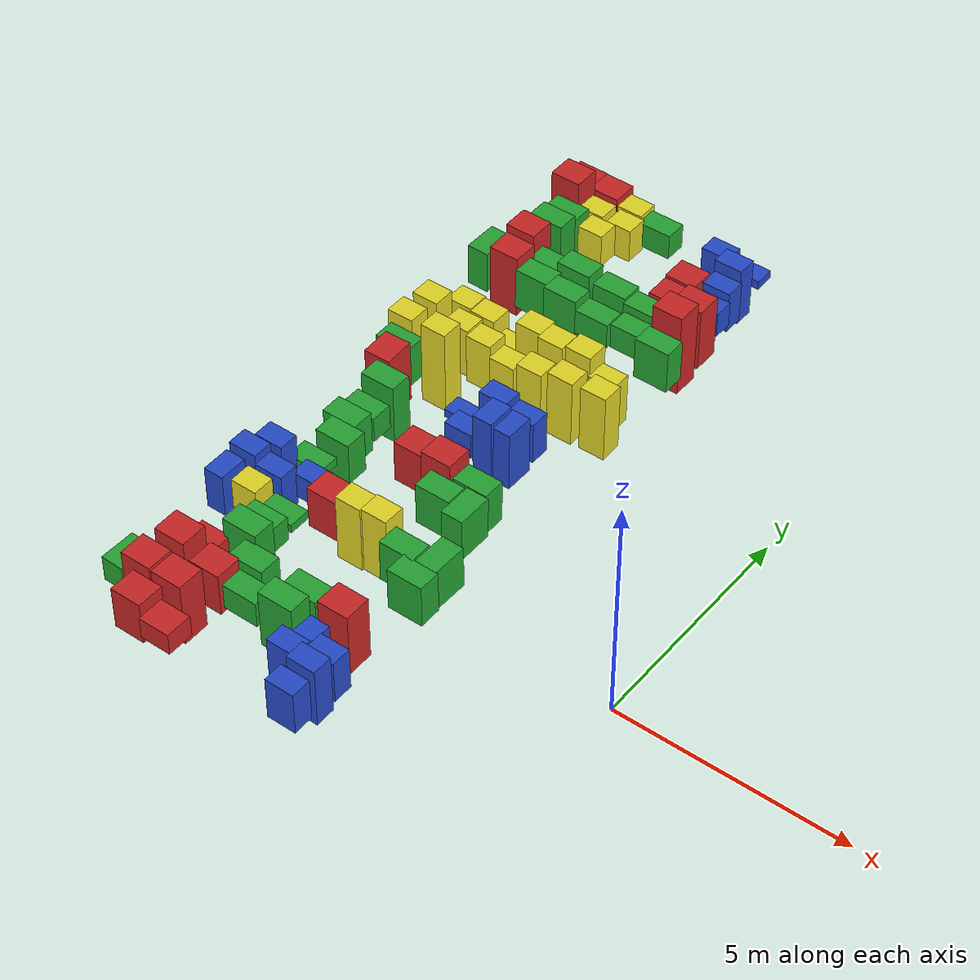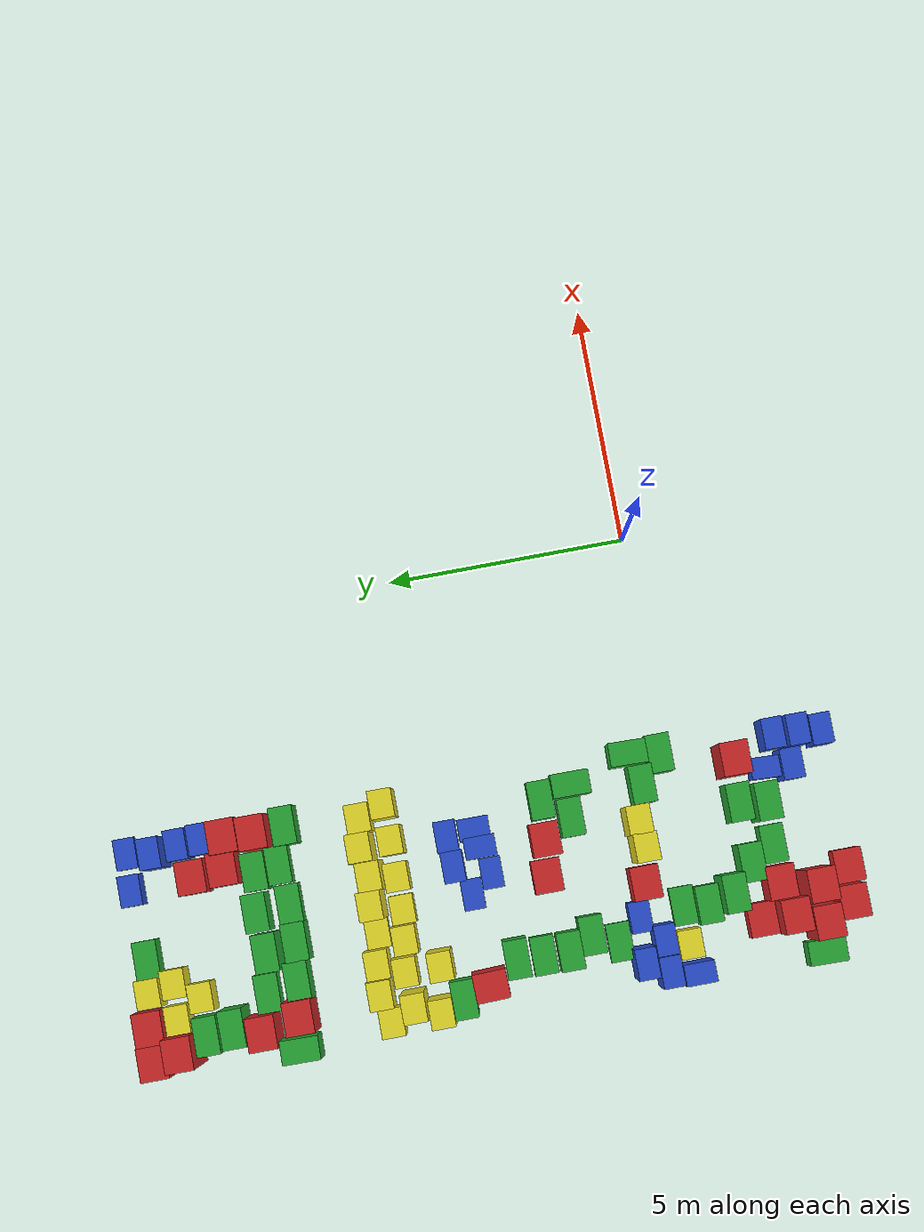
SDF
<sdf version="1.6">
 <world name="default">
  <gravity>0 0 -9.8</gravity>
  <magnetic_field>6e-06 2.3e-05 -4.2e-05</magnetic_field>
  <atmosphere type="adiabatic"/>
  <physics name="default_physics" default="0" type="ode">
   <max_step_size>0.001</max_step_size>
   <real_time_factor>1</real_time_factor>
   <real_time_update_rate>1000</real_time_update_rate>
  </physics>
  <scene><ambient>0.4 0.4 0.4 1</ambient><background>0.7 0.7 0.7 1</background><shadows>1</shadows></scene>
  <spherical_coordinates>
   <surface_model>EARTH_WGS84</surface_model>
   <latitude_deg>0</latitude_deg>
   <longitude_deg>0</longitude_deg>
   <elevation>0</elevation>
   <heading_deg>0</heading_deg>
  </spherical_coordinates>
  <model name="baggage_C_0.8">
   <static>1</static>
   <link name="link">
    <collision name="collision"><geometry><box><size>0.6 0.5 0.8</size></box></geometry></collision>
    <visual name="visual">
     <geometry><box><size>0.6 0.5 0.8</size></box></geometry>
     <material>
      <script><uri>file://media/materials/scripts/gazebo.material</uri><name>Gazebo/Yellow</name></script>
     </material>
    </visual>
   </link>
   <pose>-9.02288 6.55759 0 0 -0 0</pose>
  </model>
  <model name="baggage_C_1.2">
   <static>1</static>
   <link name="link">
    <collision name="collision"><geometry><box><size>0.6 0.5 1.2</size></box></geometry></collision>
    <visual name="visual">
     <geometry><box><size>0.6 0.5 1.2</size></box></geometry>
     <material>
      <script><uri>file://media/materials/scripts/gazebo.material</uri><name>Gazebo/Yellow</name></script>
     </material>
    </visual>
   </link>
   <pose>-8.42569 6.69145 0 0 -0 0</pose>
  </model>
  <model name="baggage_C_1.2_0">
   <static>1</static>
   <link name="link">
    <collision name="collision"><geometry><box><size>0.6 0.5 1.2</size></box></geometry></collision>
    <visual name="visual">
     <geometry><box><size>0.6 0.5 1.2</size></box></geometry>
     <material>
      <script><uri>file://media/materials/scripts/gazebo.material</uri><name>Gazebo/Yellow</name></script>
     </material>
    </visual>
   </link>
   <pose>-7.80627 6.64754 0 0 -0 0</pose>
  </model>
  <model name="baggage_C_0.4">
   <static>1</static>
   <link name="link">
    <collision name="collision"><geometry><box><size>0.6 0.5 0.4</size></box></geometry></collision>
    <visual name="visual">
     <geometry><box><size>0.6 0.5 0.4</size></box></geometry>
     <material>
      <script><uri>file://media/materials/scripts/gazebo.material</uri><name>Gazebo/Yellow</name></script>
     </material>
    </visual>
   </link>
   <pose>-7.18453 6.53717 0 0 -0 0</pose>
  </model>
  <model name="baggage_C_2.0">
   <static>1</static>
   <link name="link">
    <collision name="collision"><geometry><box><size>0.6 0.5 2</size></box></geometry></collision>
    <visual name="visual">
     <geometry><box><size>0.6 0.5 2</size></box></geometry>
     <material>
      <script><uri>file://media/materials/scripts/gazebo.material</uri><name>Gazebo/Yellow</name></script>
     </material>
    </visual>
   </link>
   <pose>-6.59003 6.55894 0 0 -0 0</pose>
  </model>
  <model name="baggage_C_2.0_0">
   <static>1</static>
   <link name="link">
    <collision name="collision"><geometry><box><size>0.6 0.5 2</size></box></geometry></collision>
    <visual name="visual">
     <geometry><box><size>0.6 0.5 2</size></box></geometry>
     <material>
      <script><uri>file://media/materials/scripts/gazebo.material</uri><name>Gazebo/Yellow</name></script>
     </material>
    </visual>
   </link>
   <pose>-5.99498 6.47714 0 0 -0 0</pose>
  </model>
  <model name="baggage_C_2.0_1">
   <static>1</static>
   <link name="link">
    <collision name="collision"><geometry><box><size>0.6 0.5 2</size></box></geometry></collision>
    <visual name="visual">
     <geometry><box><size>0.6 0.5 2</size></box></geometry>
     <material>
      <script><uri>file://media/materials/scripts/gazebo.material</uri><name>Gazebo/Yellow</name></script>
     </material>
    </visual>
   </link>
   <pose>-5.38391 6.57727 0 0 -0 0</pose>
  </model>
  <model name="baggage_C_1.2_1">
   <static>1</static>
   <link name="link">
    <collision name="collision"><geometry><box><size>0.6 0.5 1.2</size></box></geometry></collision>
    <visual name="visual">
     <geometry><box><size>0.6 0.5 1.2</size></box></geometry>
     <material>
      <script><uri>file://media/materials/scripts/gazebo.material</uri><name>Gazebo/Yellow</name></script>
     </material>
    </visual>
   </link>
   <pose>-4.77245 6.51191 0 0 -0 0</pose>
  </model>
  <model name="baggage_A_1.5">
   <static>1</static>
   <link name="link">
    <collision name="collision"><geometry><box><size>0.7 0.6 1.5</size></box></geometry></collision>
    <visual name="visual">
     <geometry><box><size>0.7 0.6 1.5</size></box></geometry>
     <material>
      <script><uri>file://media/materials/scripts/gazebo.material</uri><name>Gazebo/Red</name></script>
     </material>
    </visual>
   </link>
   <pose>-8.61221 -2.63519 0 0 -0 0</pose>
  </model>
  <model name="baggage_A_2.0">
   <static>1</static>
   <link name="link">
    <collision name="collision"><geometry><box><size>0.7 0.6 2</size></box></geometry></collision>
    <visual name="visual">
     <geometry><box><size>0.7 0.6 2</size></box></geometry>
     <material>
      <script><uri>file://media/materials/scripts/gazebo.material</uri><name>Gazebo/Red</name></script>
     </material>
    </visual>
   </link>
   <pose>-8.35893 -1.97275 0 0 -0 0</pose>
  </model>
  <model name="baggage_A_1.5_0">
   <static>1</static>
   <link name="link">
    <collision name="collision"><geometry><box><size>0.7 0.6 1.5</size></box></geometry></collision>
    <visual name="visual">
     <geometry><box><size>0.7 0.6 1.5</size></box></geometry>
     <material>
      <script><uri>file://media/materials/scripts/gazebo.material</uri><name>Gazebo/Red</name></script>
     </material>
    </visual>
   </link>
   <pose>-7.85129 -2.65398 0 0 -0 0</pose>
  </model>
  <model name="baggage_A_1.0">
   <static>1</static>
   <link name="link">
    <collision name="collision"><geometry><box><size>0.7 0.6 1</size></box></geometry></collision>
    <visual name="visual">
     <geometry><box><size>0.7 0.6 1</size></box></geometry>
     <material>
      <script><uri>file://media/materials/scripts/gazebo.material</uri><name>Gazebo/Red</name></script>
     </material>
    </visual>
   </link>
   <pose>-8.31175 -3.25848 0 0 -0 0</pose>
  </model>
  <model name="baggage_A_0.5">
   <static>1</static>
   <link name="link">
    <collision name="collision"><geometry><box><size>0.7 0.6 0.5</size></box></geometry></collision>
    <visual name="visual">
     <geometry><box><size>0.7 0.6 0.5</size></box></geometry>
     <material>
      <script><uri>file://media/materials/scripts/gazebo.material</uri><name>Gazebo/Red</name></script>
     </material>
    </visual>
   </link>
   <pose>-7.5788 -3.33237 0 0 -0 0</pose>
  </model>
  <model name="baggage_A_1.0_0">
   <static>1</static>
   <link name="link">
    <collision name="collision"><geometry><box><size>0.7 0.6 1</size></box></geometry></collision>
    <visual name="visual">
     <geometry><box><size>0.7 0.6 1</size></box></geometry>
     <material>
      <script><uri>file://media/materials/scripts/gazebo.material</uri><name>Gazebo/Red</name></script>
     </material>
    </visual>
   </link>
   <pose>-7.65243 -1.86558 0 0 -0 0</pose>
  </model>
  <model name="baggage_A_0.5_0">
   <static>1</static>
   <link name="link">
    <collision name="collision"><geometry><box><size>0.7 0.6 0.5</size></box></geometry></collision>
    <visual name="visual">
     <geometry><box><size>0.7 0.6 0.5</size></box></geometry>
     <material>
      <script><uri>file://media/materials/scripts/gazebo.material</uri><name>Gazebo/Red</name></script>
     </material>
    </visual>
   </link>
   <pose>-8.34132 -1.36306 0 0 -0 0</pose>
  </model>
  <model name="baggage_D_0.6">
   <static>1</static>
   <link name="link">
    <collision name="collision"><geometry><box><size>0.8 0.5 0.6</size></box></geometry></collision>
    <visual name="visual">
     <geometry><box><size>0.8 0.5 0.6</size></box></geometry>
     <material>
      <script><uri>file://media/materials/scripts/gazebo.material</uri><name>Gazebo/Green</name></script>
     </material>
    </visual>
   </link>
   <pose>-6.84847 -1.87523 0 0 -0 0</pose>
  </model>
  <model name="baggage_D_1.0">
   <static>1</static>
   <link name="link">
    <collision name="collision"><geometry><box><size>0.8 0.5 1</size></box></geometry></collision>
    <visual name="visual">
     <geometry><box><size>0.8 0.5 1</size></box></geometry>
     <material>
      <script><uri>file://media/materials/scripts/gazebo.material</uri><name>Gazebo/Green</name></script>
     </material>
    </visual>
   </link>
   <pose>-7.14607 -1.34989 0 0 -0 0</pose>
  </model>
  <model name="baggage_D_1.0_0">
   <static>1</static>
   <link name="link">
    <collision name="collision"><geometry><box><size>0.8 0.5 1</size></box></geometry></collision>
    <visual name="visual">
     <geometry><box><size>0.8 0.5 1</size></box></geometry>
     <material>
      <script><uri>file://media/materials/scripts/gazebo.material</uri><name>Gazebo/Green</name></script>
     </material>
    </visual>
   </link>
   <pose>-5.88131 -1.33122 0 0 -0 0</pose>
  </model>
  <model name="baggage_D_1.4">
   <static>1</static>
   <link name="link">
    <collision name="collision"><geometry><box><size>0.8 0.5 1.4</size></box></geometry></collision>
    <visual name="visual">
     <geometry><box><size>0.8 0.5 1.4</size></box></geometry>
     <material>
      <script><uri>file://media/materials/scripts/gazebo.material</uri><name>Gazebo/Green</name></script>
     </material>
    </visual>
   </link>
   <pose>-5.9618 -1.88811 0 0 -0 0</pose>
  </model>
  <model name="baggage_B_1.0">
   <static>1</static>
   <link name="link">
    <collision name="collision"><geometry><box><size>0.65 0.45 1</size></box></geometry></collision>
    <visual name="visual">
     <geometry><box><size>0.65 0.45 1</size></box></geometry>
     <material>
      <script><uri>file://media/materials/scripts/gazebo.material</uri><name>Gazebo/Blue</name></script>
     </material>
    </visual>
   </link>
   <pose>-4.69259 -3.28387 0 0 -0 0</pose>
  </model>
  <model name="baggage_B_1.4">
   <static>1</static>
   <link name="link">
    <collision name="collision"><geometry><box><size>0.65 0.45 1.4</size></box></geometry></collision>
    <visual name="visual">
     <geometry><box><size>0.65 0.45 1.4</size></box></geometry>
     <material>
      <script><uri>file://media/materials/scripts/gazebo.material</uri><name>Gazebo/Blue</name></script>
     </material>
    </visual>
   </link>
   <pose>-4.62026 -2.77564 0 0 -0 0</pose>
  </model>
  <model name="baggage_B_1.0_0">
   <static>1</static>
   <link name="link">
    <collision name="collision"><geometry><box><size>0.65 0.45 1</size></box></geometry></collision>
    <visual name="visual">
     <geometry><box><size>0.65 0.45 1</size></box></geometry>
     <material>
      <script><uri>file://media/materials/scripts/gazebo.material</uri><name>Gazebo/Blue</name></script>
     </material>
    </visual>
   </link>
   <pose>-4.60367 -2.28904 0 0 -0 0</pose>
  </model>
  <model name="baggage_B_0.6">
   <static>1</static>
   <link name="link">
    <collision name="collision"><geometry><box><size>0.65 0.45 0.6</size></box></geometry></collision>
    <visual name="visual">
     <geometry><box><size>0.65 0.45 0.6</size></box></geometry>
     <material>
      <script><uri>file://media/materials/scripts/gazebo.material</uri><name>Gazebo/Blue</name></script>
     </material>
    </visual>
   </link>
   <pose>-5.27287 -2.03398 0 0 0 -1.61619</pose>
  </model>
  <model name="baggage_B_1.0_1">
   <static>1</static>
   <link name="link">
    <collision name="collision"><geometry><box><size>0.65 0.45 1</size></box></geometry></collision>
    <visual name="visual">
     <geometry><box><size>0.65 0.45 1</size></box></geometry>
     <material>
      <script><uri>file://media/materials/scripts/gazebo.material</uri><name>Gazebo/Blue</name></script>
     </material>
    </visual>
   </link>
   <pose>-5.28809 -2.55004 0 0 -0 0</pose>
  </model>
  <model name="baggage_D_1.4_0">
   <static>1</static>
   <link name="link">
    <collision name="collision"><geometry><box><size>0.8 0.5 1.4</size></box></geometry></collision>
    <visual name="visual">
     <geometry><box><size>0.8 0.5 1.4</size></box></geometry>
     <material>
      <script><uri>file://media/materials/scripts/gazebo.material</uri><name>Gazebo/Green</name></script>
     </material>
    </visual>
   </link>
   <pose>-7.69797 -0.871649 0 0 -0 0</pose>
  </model>
  <model name="baggage_D_0.6_0">
   <static>1</static>
   <link name="link">
    <collision name="collision"><geometry><box><size>0.8 0.5 0.6</size></box></geometry></collision>
    <visual name="visual">
     <geometry><box><size>0.8 0.5 0.6</size></box></geometry>
     <material>
      <script><uri>file://media/materials/scripts/gazebo.material</uri><name>Gazebo/Green</name></script>
     </material>
    </visual>
   </link>
   <pose>-7.83333 -0.326161 0 0 -0 0</pose>
  </model>
  <model name="baggage_D_0.2">
   <static>1</static>
   <link name="link">
    <collision name="collision"><geometry><box><size>0.8 0.5 0.2</size></box></geometry></collision>
    <visual name="visual">
     <geometry><box><size>0.8 0.5 0.2</size></box></geometry>
     <material>
      <script><uri>file://media/materials/scripts/gazebo.material</uri><name>Gazebo/Green</name></script>
     </material>
    </visual>
   </link>
   <pose>-7.77255 0.192971 0 0 -0 0</pose>
  </model>
  <model name="baggage_C_0.8_0">
   <static>1</static>
   <link name="link">
    <collision name="collision"><geometry><box><size>0.6 0.5 0.8</size></box></geometry></collision>
    <visual name="visual">
     <geometry><box><size>0.6 0.5 0.8</size></box></geometry>
     <material>
      <script><uri>file://media/materials/scripts/gazebo.material</uri><name>Gazebo/Yellow</name></script>
     </material>
    </visual>
   </link>
   <pose>-8.56103 0.213313 0 0 -0 0</pose>
  </model>
  <model name="baggage_D_0.6_1">
   <static>1</static>
   <link name="link">
    <collision name="collision"><geometry><box><size>0.8 0.5 0.6</size></box></geometry></collision>
    <visual name="visual">
     <geometry><box><size>0.8 0.5 0.6</size></box></geometry>
     <material>
      <script><uri>file://media/materials/scripts/gazebo.material</uri><name>Gazebo/Green</name></script>
     </material>
    </visual>
   </link>
   <pose>-9.22897 -2.54763 0 0 0 -1.59539</pose>
  </model>
  <model name="baggage_B_1.0_2">
   <static>1</static>
   <link name="link">
    <collision name="collision"><geometry><box><size>0.65 0.45 1</size></box></geometry></collision>
    <visual name="visual">
     <geometry><box><size>0.65 0.45 1</size></box></geometry>
     <material>
      <script><uri>file://media/materials/scripts/gazebo.material</uri><name>Gazebo/Blue</name></script>
     </material>
    </visual>
   </link>
   <pose>-8.38814 0.709695 0 0 -0 0</pose>
  </model>
  <model name="baggage_B_1.4_0">
   <static>1</static>
   <link name="link">
    <collision name="collision"><geometry><box><size>0.65 0.45 1.4</size></box></geometry></collision>
    <visual name="visual">
     <geometry><box><size>0.65 0.45 1.4</size></box></geometry>
     <material>
      <script><uri>file://media/materials/scripts/gazebo.material</uri><name>Gazebo/Blue</name></script>
     </material>
    </visual>
   </link>
   <pose>-8.78094 1.19016 0 0 -0 0</pose>
  </model>
  <model name="baggage_D_0.2_0">
   <static>1</static>
   <link name="link">
    <collision name="collision"><geometry><box><size>0.8 0.5 0.2</size></box></geometry></collision>
    <visual name="visual">
     <geometry><box><size>0.8 0.5 0.2</size></box></geometry>
     <material>
      <script><uri>file://media/materials/scripts/gazebo.material</uri><name>Gazebo/Green</name></script>
     </material>
    </visual>
   </link>
   <pose>-8.26924 1.62623 0 0 -0 0</pose>
  </model>
  <model name="baggage_C_2.0_2">
   <static>1</static>
   <link name="link">
    <collision name="collision"><geometry><box><size>0.6 0.5 2</size></box></geometry></collision>
    <visual name="visual">
     <geometry><box><size>0.6 0.5 2</size></box></geometry>
     <material>
      <script><uri>file://media/materials/scripts/gazebo.material</uri><name>Gazebo/Yellow</name></script>
     </material>
    </visual>
   </link>
   <pose>-8.78456 6.03757 0 0 -0 0</pose>
  </model>
  <model name="baggage_C_1.2_2">
   <static>1</static>
   <link name="link">
    <collision name="collision"><geometry><box><size>0.6 0.5 1.2</size></box></geometry></collision>
    <visual name="visual">
     <geometry><box><size>0.6 0.5 1.2</size></box></geometry>
     <material>
      <script><uri>file://media/materials/scripts/gazebo.material</uri><name>Gazebo/Yellow</name></script>
     </material>
    </visual>
   </link>
   <pose>-8.05418 6.10442 0 0 -0 0</pose>
  </model>
  <model name="baggage_C_1.2_3">
   <static>1</static>
   <link name="link">
    <collision name="collision"><geometry><box><size>0.6 0.5 1.2</size></box></geometry></collision>
    <visual name="visual">
     <geometry><box><size>0.6 0.5 1.2</size></box></geometry>
     <material>
      <script><uri>file://media/materials/scripts/gazebo.material</uri><name>Gazebo/Yellow</name></script>
     </material>
    </visual>
   </link>
   <pose>-7.41094 5.9999 0 0 -0 0</pose>
  </model>
  <model name="baggage_C_0.8_1">
   <static>1</static>
   <link name="link">
    <collision name="collision"><geometry><box><size>0.6 0.5 0.8</size></box></geometry></collision>
    <visual name="visual">
     <geometry><box><size>0.6 0.5 0.8</size></box></geometry>
     <material>
      <script><uri>file://media/materials/scripts/gazebo.material</uri><name>Gazebo/Yellow</name></script>
     </material>
    </visual>
   </link>
   <pose>-6.78167 5.93861 0 0 -0 0</pose>
  </model>
  <model name="baggage_C_1.2_4">
   <static>1</static>
   <link name="link">
    <collision name="collision"><geometry><box><size>0.6 0.5 1.2</size></box></geometry></collision>
    <visual name="visual">
     <geometry><box><size>0.6 0.5 1.2</size></box></geometry>
     <material>
      <script><uri>file://media/materials/scripts/gazebo.material</uri><name>Gazebo/Yellow</name></script>
     </material>
    </visual>
   </link>
   <pose>-6.10249 5.937 0 0 -0 0</pose>
  </model>
  <model name="baggage_C_1.6">
   <static>1</static>
   <link name="link">
    <collision name="collision"><geometry><box><size>0.6 0.5 1.6</size></box></geometry></collision>
    <visual name="visual">
     <geometry><box><size>0.6 0.5 1.6</size></box></geometry>
     <material>
      <script><uri>file://media/materials/scripts/gazebo.material</uri><name>Gazebo/Yellow</name></script>
     </material>
    </visual>
   </link>
   <pose>-5.34628 5.93224 0 0 -0 0</pose>
  </model>
  <model name="baggage_C_1.6_0">
   <static>1</static>
   <link name="link">
    <collision name="collision"><geometry><box><size>0.6 0.5 1.6</size></box></geometry></collision>
    <visual name="visual">
     <geometry><box><size>0.6 0.5 1.6</size></box></geometry>
     <material>
      <script><uri>file://media/materials/scripts/gazebo.material</uri><name>Gazebo/Yellow</name></script>
     </material>
    </visual>
   </link>
   <pose>-4.57721 5.97508 0 0 -0 0</pose>
  </model>
  <model name="baggage_B_1.0_3">
   <static>1</static>
   <link name="link">
    <collision name="collision"><geometry><box><size>0.65 0.45 1</size></box></geometry></collision>
    <visual name="visual">
     <geometry><box><size>0.65 0.45 1</size></box></geometry>
     <material>
      <script><uri>file://media/materials/scripts/gazebo.material</uri><name>Gazebo/Blue</name></script>
     </material>
    </visual>
   </link>
   <pose>-5.47254 4.78501 0 0 -0 0</pose>
  </model>
  <model name="baggage_B_1.4_1">
   <static>1</static>
   <link name="link">
    <collision name="collision"><geometry><box><size>0.65 0.45 1.4</size></box></geometry></collision>
    <visual name="visual">
     <geometry><box><size>0.65 0.45 1.4</size></box></geometry>
     <material>
      <script><uri>file://media/materials/scripts/gazebo.material</uri><name>Gazebo/Blue</name></script>
     </material>
    </visual>
   </link>
   <pose>-6.11688 4.74628 0 0 -0 0</pose>
  </model>
  <model name="baggage_B_0.2">
   <static>1</static>
   <link name="link">
    <collision name="collision"><geometry><box><size>0.65 0.45 0.2</size></box></geometry></collision>
    <visual name="visual">
     <geometry><box><size>0.65 0.45 0.2</size></box></geometry>
     <material>
      <script><uri>file://media/materials/scripts/gazebo.material</uri><name>Gazebo/Blue</name></script>
     </material>
    </visual>
   </link>
   <pose>-6.74852 4.44977 0 0 -0 0</pose>
  </model>
  <model name="baggage_B_0.6_0">
   <static>1</static>
   <link name="link">
    <collision name="collision"><geometry><box><size>0.65 0.45 0.6</size></box></geometry></collision>
    <visual name="visual">
     <geometry><box><size>0.65 0.45 0.6</size></box></geometry>
     <material>
      <script><uri>file://media/materials/scripts/gazebo.material</uri><name>Gazebo/Blue</name></script>
     </material>
    </visual>
   </link>
   <pose>-6.37946 3.9895 0 0 -0 0</pose>
  </model>
  <model name="baggage_B_1.4_2">
   <static>1</static>
   <link name="link">
    <collision name="collision"><geometry><box><size>0.65 0.45 1.4</size></box></geometry></collision>
    <visual name="visual">
     <geometry><box><size>0.65 0.45 1.4</size></box></geometry>
     <material>
      <script><uri>file://media/materials/scripts/gazebo.material</uri><name>Gazebo/Blue</name></script>
     </material>
    </visual>
   </link>
   <pose>-5.81686 4.12707 0.127689 0 0 -1.56607</pose>
  </model>
  <model name="baggage_B_1.4_3">
   <static>1</static>
   <link name="link">
    <collision name="collision"><geometry><box><size>0.65 0.45 1.4</size></box></geometry></collision>
    <visual name="visual">
     <geometry><box><size>0.65 0.45 1.4</size></box></geometry>
     <material>
      <script><uri>file://media/materials/scripts/gazebo.material</uri><name>Gazebo/Blue</name></script>
     </material>
    </visual>
   </link>
   <pose>-5.41926 4.19015 0 0 0 -1.57612</pose>
  </model>
  <model name="baggage_D_1.0_1">
   <static>1</static>
   <link name="link">
    <collision name="collision"><geometry><box><size>0.8 0.5 1</size></box></geometry></collision>
    <visual name="visual">
     <geometry><box><size>0.8 0.5 1</size></box></geometry>
     <material>
      <script><uri>file://media/materials/scripts/gazebo.material</uri><name>Gazebo/Green</name></script>
     </material>
    </visual>
   </link>
   <pose>-8.01273 2.17989 0 0 -0 0</pose>
  </model>
  <model name="baggage_D_1.0_2">
   <static>1</static>
   <link name="link">
    <collision name="collision"><geometry><box><size>0.8 0.5 1</size></box></geometry></collision>
    <visual name="visual">
     <geometry><box><size>0.8 0.5 1</size></box></geometry>
     <material>
      <script><uri>file://media/materials/scripts/gazebo.material</uri><name>Gazebo/Green</name></script>
     </material>
    </visual>
   </link>
   <pose>-8.25294 2.67896 0 0 -0 0</pose>
  </model>
  <model name="baggage_D_0.6_2">
   <static>1</static>
   <link name="link">
    <collision name="collision"><geometry><box><size>0.8 0.5 0.6</size></box></geometry></collision>
    <visual name="visual">
     <geometry><box><size>0.8 0.5 0.6</size></box></geometry>
     <material>
      <script><uri>file://media/materials/scripts/gazebo.material</uri><name>Gazebo/Green</name></script>
     </material>
    </visual>
   </link>
   <pose>-8.24315 3.23008 0 0 -0 0</pose>
  </model>
  <model name="baggage_D_1.4_1">
   <static>1</static>
   <link name="link">
    <collision name="collision"><geometry><box><size>0.8 0.5 1.4</size></box></geometry></collision>
    <visual name="visual">
     <geometry><box><size>0.8 0.5 1.4</size></box></geometry>
     <material>
      <script><uri>file://media/materials/scripts/gazebo.material</uri><name>Gazebo/Green</name></script>
     </material>
    </visual>
   </link>
   <pose>-8.20058 3.79284 0 0 -0 0</pose>
  </model>
  <model name="baggage_A_1.5_1">
   <static>1</static>
   <link name="link">
    <collision name="collision"><geometry><box><size>0.7 0.6 1.5</size></box></geometry></collision>
    <visual name="visual">
     <geometry><box><size>0.7 0.6 1.5</size></box></geometry>
     <material>
      <script><uri>file://media/materials/scripts/gazebo.material</uri><name>Gazebo/Red</name></script>
     </material>
    </visual>
   </link>
   <pose>-8.64201 4.41438 0 0 0 -1.53905</pose>
  </model>
  <model name="baggage_D_1.0_3">
   <static>1</static>
   <link name="link">
    <collision name="collision"><geometry><box><size>0.8 0.5 1</size></box></geometry></collision>
    <visual name="visual">
     <geometry><box><size>0.8 0.5 1</size></box></geometry>
     <material>
      <script><uri>file://media/materials/scripts/gazebo.material</uri><name>Gazebo/Green</name></script>
     </material>
    </visual>
   </link>
   <pose>-8.82434 5.00971 0 0 -0 0</pose>
  </model>
  <model name="baggage_C_1.6_1">
   <static>1</static>
   <link name="link">
    <collision name="collision"><geometry><box><size>0.6 0.5 1.6</size></box></geometry></collision>
    <visual name="visual">
     <geometry><box><size>0.6 0.5 1.6</size></box></geometry>
     <material>
      <script><uri>file://media/materials/scripts/gazebo.material</uri><name>Gazebo/Yellow</name></script>
     </material>
    </visual>
   </link>
   <pose>-9.00211 5.50481 0 0 -0 0</pose>
  </model>
  <model name="baggage_A_1.0_1">
   <static>1</static>
   <link name="link">
    <collision name="collision"><geometry><box><size>0.7 0.6 1</size></box></geometry></collision>
    <visual name="visual">
     <geometry><box><size>0.7 0.6 1</size></box></geometry>
     <material>
      <script><uri>file://media/materials/scripts/gazebo.material</uri><name>Gazebo/Red</name></script>
     </material>
    </visual>
   </link>
   <pose>-6.65161 2.86872 0 0 -0 0</pose>
  </model>
  <model name="baggage_A_1.5_2">
   <static>1</static>
   <link name="link">
    <collision name="collision"><geometry><box><size>0.7 0.6 1.5</size></box></geometry></collision>
    <visual name="visual">
     <geometry><box><size>0.7 0.6 1.5</size></box></geometry>
     <material>
      <script><uri>file://media/materials/scripts/gazebo.material</uri><name>Gazebo/Red</name></script>
     </material>
    </visual>
   </link>
   <pose>-5.90777 2.77309 0 0 -0 0</pose>
  </model>
  <model name="baggage_D_1.0_4">
   <static>1</static>
   <link name="link">
    <collision name="collision"><geometry><box><size>0.8 0.5 1</size></box></geometry></collision>
    <visual name="visual">
     <geometry><box><size>0.8 0.5 1</size></box></geometry>
     <material>
      <script><uri>file://media/materials/scripts/gazebo.material</uri><name>Gazebo/Green</name></script>
     </material>
    </visual>
   </link>
   <pose>-5.08871 2.71814 0 0 -0 0</pose>
  </model>
  <model name="baggage_D_1.0_5">
   <static>1</static>
   <link name="link">
    <collision name="collision"><geometry><box><size>0.8 0.5 1</size></box></geometry></collision>
    <visual name="visual">
     <geometry><box><size>0.8 0.5 1</size></box></geometry>
     <material>
      <script><uri>file://media/materials/scripts/gazebo.material</uri><name>Gazebo/Green</name></script>
     </material>
    </visual>
   </link>
   <pose>-5.55277 2.16351 0 0 -0 0</pose>
  </model>
  <model name="baggage_D_1.0_6">
   <static>1</static>
   <link name="link">
    <collision name="collision"><geometry><box><size>0.8 0.5 1</size></box></geometry></collision>
    <visual name="visual">
     <geometry><box><size>0.8 0.5 1</size></box></geometry>
     <material>
      <script><uri>file://media/materials/scripts/gazebo.material</uri><name>Gazebo/Green</name></script>
     </material>
    </visual>
   </link>
   <pose>-4.87402 2.04713 0 0 0 -1.57628</pose>
  </model>
  <model name="baggage_B_0.6_1">
   <static>1</static>
   <link name="link">
    <collision name="collision"><geometry><box><size>0.65 0.45 0.6</size></box></geometry></collision>
    <visual name="visual">
     <geometry><box><size>0.65 0.45 0.6</size></box></geometry>
     <material>
      <script><uri>file://media/materials/scripts/gazebo.material</uri><name>Gazebo/Blue</name></script>
     </material>
    </visual>
   </link>
   <pose>-7.83455 1.12945 0 0 -0 0</pose>
  </model>
  <model name="baggage_A_1.0_2">
   <static>1</static>
   <link name="link">
    <collision name="collision"><geometry><box><size>0.7 0.6 1</size></box></geometry></collision>
    <visual name="visual">
     <geometry><box><size>0.7 0.6 1</size></box></geometry>
     <material>
      <script><uri>file://media/materials/scripts/gazebo.material</uri><name>Gazebo/Red</name></script>
     </material>
    </visual>
   </link>
   <pose>-7.16226 0.892479 0 0 -0 0</pose>
  </model>
  <model name="baggage_C_1.6_2">
   <static>1</static>
   <link name="link">
    <collision name="collision"><geometry><box><size>0.6 0.5 1.6</size></box></geometry></collision>
    <visual name="visual">
     <geometry><box><size>0.6 0.5 1.6</size></box></geometry>
     <material>
      <script><uri>file://media/materials/scripts/gazebo.material</uri><name>Gazebo/Yellow</name></script>
     </material>
    </visual>
   </link>
   <pose>-6.43994 0.759782 0 0 -0 0</pose>
  </model>
  <model name="baggage_C_1.6_3">
   <static>1</static>
   <link name="link">
    <collision name="collision"><geometry><box><size>0.6 0.5 1.6</size></box></geometry></collision>
    <visual name="visual">
     <geometry><box><size>0.6 0.5 1.6</size></box></geometry>
     <material>
      <script><uri>file://media/materials/scripts/gazebo.material</uri><name>Gazebo/Yellow</name></script>
     </material>
    </visual>
   </link>
   <pose>-5.85654 0.80354 0 0 -0 0</pose>
  </model>
  <model name="baggage_D_1.0_7">
   <static>1</static>
   <link name="link">
    <collision name="collision"><geometry><box><size>0.8 0.5 1</size></box></geometry></collision>
    <visual name="visual">
     <geometry><box><size>0.8 0.5 1</size></box></geometry>
     <material>
      <script><uri>file://media/materials/scripts/gazebo.material</uri><name>Gazebo/Green</name></script>
     </material>
    </visual>
   </link>
   <pose>-5.14706 0.580675 0 0 -0 0</pose>
  </model>
  <model name="baggage_D_1.0_8">
   <static>1</static>
   <link name="link">
    <collision name="collision"><geometry><box><size>0.8 0.5 1</size></box></geometry></collision>
    <visual name="visual">
     <geometry><box><size>0.8 0.5 1</size></box></geometry>
     <material>
      <script><uri>file://media/materials/scripts/gazebo.material</uri><name>Gazebo/Green</name></script>
     </material>
    </visual>
   </link>
   <pose>-4.58159 0.114753 0 0 -0 0</pose>
  </model>
  <model name="baggage_D_1.0_9">
   <static>1</static>
   <link name="link">
    <collision name="collision"><geometry><box><size>0.8 0.5 1</size></box></geometry></collision>
    <visual name="visual">
     <geometry><box><size>0.8 0.5 1</size></box></geometry>
     <material>
      <script><uri>file://media/materials/scripts/gazebo.material</uri><name>Gazebo/Green</name></script>
     </material>
    </visual>
   </link>
   <pose>-4.45854 0.753022 0 0 0 -1.59498</pose>
  </model>
  <model name="baggage_A_1.5_3">
   <static>1</static>
   <link name="link">
    <collision name="collision"><geometry><box><size>0.7 0.6 1.5</size></box></geometry></collision>
    <visual name="visual">
     <geometry><box><size>0.7 0.6 1.5</size></box></geometry>
     <material>
      <script><uri>file://media/materials/scripts/gazebo.material</uri><name>Gazebo/Red</name></script>
     </material>
    </visual>
   </link>
   <pose>-4.97836 -1.38674 0 0 -0 0</pose>
  </model>
  <model name="baggage_D_1.0_10">
   <static>1</static>
   <link name="link">
    <collision name="collision"><geometry><box><size>0.8 0.5 1</size></box></geometry></collision>
    <visual name="visual">
     <geometry><box><size>0.8 0.5 1</size></box></geometry>
     <material>
      <script><uri>file://media/materials/scripts/gazebo.material</uri><name>Gazebo/Green</name></script>
     </material>
    </visual>
   </link>
   <pose>-4.64026 8.06866 0 0 -0 0</pose>
  </model>
  <model name="baggage_D_0.6_3">
   <static>1</static>
   <link name="link">
    <collision name="collision"><geometry><box><size>0.8 0.5 0.6</size></box></geometry></collision>
    <visual name="visual">
     <geometry><box><size>0.8 0.5 0.6</size></box></geometry>
     <material>
      <script><uri>file://media/materials/scripts/gazebo.material</uri><name>Gazebo/Green</name></script>
     </material>
    </visual>
   </link>
   <pose>-5.41472 8.32079 0 0 -0 0</pose>
  </model>
  <model name="baggage_D_0.6_4">
   <static>1</static>
   <link name="link">
    <collision name="collision"><geometry><box><size>0.8 0.5 0.6</size></box></geometry></collision>
    <visual name="visual">
     <geometry><box><size>0.8 0.5 0.6</size></box></geometry>
     <material>
      <script><uri>file://media/materials/scripts/gazebo.material</uri><name>Gazebo/Green</name></script>
     </material>
    </visual>
   </link>
   <pose>-6.24346 8.23105 0 0 -0 0</pose>
  </model>
  <model name="baggage_D_1.0_11">
   <static>1</static>
   <link name="link">
    <collision name="collision"><geometry><box><size>0.8 0.5 1</size></box></geometry></collision>
    <visual name="visual">
     <geometry><box><size>0.8 0.5 1</size></box></geometry>
     <material>
      <script><uri>file://media/materials/scripts/gazebo.material</uri><name>Gazebo/Green</name></script>
     </material>
    </visual>
   </link>
   <pose>-7.0361 8.23105 0 0 -0 0</pose>
  </model>
  <model name="baggage_D_1.0_12">
   <static>1</static>
   <link name="link">
    <collision name="collision"><geometry><box><size>0.8 0.5 1</size></box></geometry></collision>
    <visual name="visual">
     <geometry><box><size>0.8 0.5 1</size></box></geometry>
     <material>
      <script><uri>file://media/materials/scripts/gazebo.material</uri><name>Gazebo/Green</name></script>
     </material>
    </visual>
   </link>
   <pose>-7.82515 8.31943 0 0 -0 0</pose>
  </model>
  <model name="baggage_A_1.5_4">
   <static>1</static>
   <link name="link">
    <collision name="collision"><geometry><box><size>0.7 0.6 1.5</size></box></geometry></collision>
    <visual name="visual">
     <geometry><box><size>0.7 0.6 1.5</size></box></geometry>
     <material>
      <script><uri>file://media/materials/scripts/gazebo.material</uri><name>Gazebo/Red</name></script>
     </material>
    </visual>
   </link>
   <pose>-8.5559 8.3985 0 0 -0 0</pose>
  </model>
  <model name="baggage_A_1.5_5">
   <static>1</static>
   <link name="link">
    <collision name="collision"><geometry><box><size>0.7 0.6 1.5</size></box></geometry></collision>
    <visual name="visual">
     <geometry><box><size>0.7 0.6 1.5</size></box></geometry>
     <material>
      <script><uri>file://media/materials/scripts/gazebo.material</uri><name>Gazebo/Red</name></script>
     </material>
    </visual>
   </link>
   <pose>-8.73123 9.19191 0 0 -0 0</pose>
  </model>
  <model name="baggage_D_0.6_5">
   <static>1</static>
   <link name="link">
    <collision name="collision"><geometry><box><size>0.8 0.5 0.6</size></box></geometry></collision>
    <visual name="visual">
     <geometry><box><size>0.8 0.5 0.6</size></box></geometry>
     <material>
      <script><uri>file://media/materials/scripts/gazebo.material</uri><name>Gazebo/Green</name></script>
     </material>
    </visual>
   </link>
   <pose>-7.96903 8.9791 0 0 -0 0</pose>
  </model>
  <model name="baggage_D_1.4_2">
   <static>1</static>
   <link name="link">
    <collision name="collision"><geometry><box><size>0.8 0.5 1.4</size></box></geometry></collision>
    <visual name="visual">
     <geometry><box><size>0.8 0.5 1.4</size></box></geometry>
     <material>
      <script><uri>file://media/materials/scripts/gazebo.material</uri><name>Gazebo/Green</name></script>
     </material>
    </visual>
   </link>
   <pose>-7.14621 8.84396 0 0 -0 0</pose>
  </model>
  <model name="baggage_D_1.0_13">
   <static>1</static>
   <link name="link">
    <collision name="collision"><geometry><box><size>0.8 0.5 1</size></box></geometry></collision>
    <visual name="visual">
     <geometry><box><size>0.8 0.5 1</size></box></geometry>
     <material>
      <script><uri>file://media/materials/scripts/gazebo.material</uri><name>Gazebo/Green</name></script>
     </material>
    </visual>
   </link>
   <pose>-6.30407 8.92854 0 0 -0 0</pose>
  </model>
  <model name="baggage_D_1.0_14">
   <static>1</static>
   <link name="link">
    <collision name="collision"><geometry><box><size>0.8 0.5 1</size></box></geometry></collision>
    <visual name="visual">
     <geometry><box><size>0.8 0.5 1</size></box></geometry>
     <material>
      <script><uri>file://media/materials/scripts/gazebo.material</uri><name>Gazebo/Green</name></script>
     </material>
    </visual>
   </link>
   <pose>-5.46339 8.81184 0 0 -0 0</pose>
  </model>
  <model name="baggage_A_2.0_0">
   <static>1</static>
   <link name="link">
    <collision name="collision"><geometry><box><size>0.7 0.6 2</size></box></geometry></collision>
    <visual name="visual">
     <geometry><box><size>0.7 0.6 2</size></box></geometry>
     <material>
      <script><uri>file://media/materials/scripts/gazebo.material</uri><name>Gazebo/Red</name></script>
     </material>
    </visual>
   </link>
   <pose>-4.67828 8.67706 0 0 -0 0</pose>
  </model>
  <model name="baggage_A_1.5_6">
   <static>1</static>
   <link name="link">
    <collision name="collision"><geometry><box><size>0.7 0.6 1.5</size></box></geometry></collision>
    <visual name="visual">
     <geometry><box><size>0.7 0.6 1.5</size></box></geometry>
     <material>
      <script><uri>file://media/materials/scripts/gazebo.material</uri><name>Gazebo/Red</name></script>
     </material>
    </visual>
   </link>
   <pose>-4.63443 9.31807 0 0 -0 0</pose>
  </model>
  <model name="baggage_A_1.0_3">
   <static>1</static>
   <link name="link">
    <collision name="collision"><geometry><box><size>0.7 0.6 1</size></box></geometry></collision>
    <visual name="visual">
     <geometry><box><size>0.7 0.6 1</size></box></geometry>
     <material>
      <script><uri>file://media/materials/scripts/gazebo.material</uri><name>Gazebo/Red</name></script>
     </material>
    </visual>
   </link>
   <pose>-5.29254 9.45258 0 0 -0 0</pose>
  </model>
  <model name="baggage_A_1.0_4">
   <static>1</static>
   <link name="link">
    <collision name="collision"><geometry><box><size>0.7 0.6 1</size></box></geometry></collision>
    <visual name="visual">
     <geometry><box><size>0.7 0.6 1</size></box></geometry>
     <material>
      <script><uri>file://media/materials/scripts/gazebo.material</uri><name>Gazebo/Red</name></script>
     </material>
    </visual>
   </link>
   <pose>-5.34102 10.1152 0 0 -0 0</pose>
  </model>
  <model name="baggage_B_0.6_2">
   <static>1</static>
   <link name="link">
    <collision name="collision"><geometry><box><size>0.65 0.45 0.6</size></box></geometry></collision>
    <visual name="visual">
     <geometry><box><size>0.65 0.45 0.6</size></box></geometry>
     <material>
      <script><uri>file://media/materials/scripts/gazebo.material</uri><name>Gazebo/Blue</name></script>
     </material>
    </visual>
   </link>
   <pose>-4.59122 9.85901 0 0 -0 0</pose>
  </model>
  <model name="baggage_B_1.0_4">
   <static>1</static>
   <link name="link">
    <collision name="collision"><geometry><box><size>0.65 0.45 1</size></box></geometry></collision>
    <visual name="visual">
     <geometry><box><size>0.65 0.45 1</size></box></geometry>
     <material>
      <script><uri>file://media/materials/scripts/gazebo.material</uri><name>Gazebo/Blue</name></script>
     </material>
    </visual>
   </link>
   <pose>-4.62599 10.3122 0 0 -0 0</pose>
  </model>
  <model name="baggage_C_2.0_3">
   <static>1</static>
   <link name="link">
    <collision name="collision"><geometry><box><size>0.6 0.5 2</size></box></geometry></collision>
    <visual name="visual">
     <geometry><box><size>0.6 0.5 2</size></box></geometry>
     <material>
      <script><uri>file://media/materials/scripts/gazebo.material</uri><name>Gazebo/Yellow</name></script>
     </material>
    </visual>
   </link>
   <pose>-8.05261 5.36376 0 0 -0 0</pose>
  </model>
  <model name="baggage_B_1.4_4">
   <static>1</static>
   <link name="link">
    <collision name="collision"><geometry><box><size>0.65 0.45 1.4</size></box></geometry></collision>
    <visual name="visual">
     <geometry><box><size>0.65 0.45 1.4</size></box></geometry>
     <material>
      <script><uri>file://media/materials/scripts/gazebo.material</uri><name>Gazebo/Blue</name></script>
     </material>
    </visual>
   </link>
   <pose>-9.0308 0.726082 0 0 -0 0</pose>
  </model>
  <model name="baggage_B_1.0_5">
   <static>1</static>
   <link name="link">
    <collision name="collision"><geometry><box><size>0.65 0.45 1</size></box></geometry></collision>
    <visual name="visual">
     <geometry><box><size>0.65 0.45 1</size></box></geometry>
     <material>
      <script><uri>file://media/materials/scripts/gazebo.material</uri><name>Gazebo/Blue</name></script>
     </material>
    </visual>
   </link>
   <pose>-9.17888 0.141953 0 0 -0 1.57146</pose>
  </model>
  <model name="baggage_D_1.0_15">
   <static>1</static>
   <link name="link">
    <collision name="collision"><geometry><box><size>0.8 0.5 1</size></box></geometry></collision>
    <visual name="visual">
     <geometry><box><size>0.8 0.5 1</size></box></geometry>
     <material>
      <script><uri>file://media/materials/scripts/gazebo.material</uri><name>Gazebo/Green</name></script>
     </material>
    </visual>
   </link>
   <pose>-9.22088 8.49619 0 0 -0 1.55481</pose>
  </model>
  <model name="baggage_D_1.4_3">
   <static>1</static>
   <link name="link">
    <collision name="collision"><geometry><box><size>0.8 0.5 1.4</size></box></geometry></collision>
    <visual name="visual">
     <geometry><box><size>0.8 0.5 1.4</size></box></geometry>
     <material>
      <script><uri>file://media/materials/scripts/gazebo.material</uri><name>Gazebo/Green</name></script>
     </material>
    </visual>
   </link>
   <pose>-8.53846 9.77007 0 0 -0 0</pose>
  </model>
  <model name="baggage_D_1.0_16">
   <static>1</static>
   <link name="link">
    <collision name="collision"><geometry><box><size>0.8 0.5 1</size></box></geometry></collision>
    <visual name="visual">
     <geometry><box><size>0.8 0.5 1</size></box></geometry>
     <material>
      <script><uri>file://media/materials/scripts/gazebo.material</uri><name>Gazebo/Green</name></script>
     </material>
    </visual>
   </link>
   <pose>-8.59111 10.3383 0 0 -0 0</pose>
  </model>
  <model name="baggage_A_2.0_1">
   <static>1</static>
   <link name="link">
    <collision name="collision"><geometry><box><size>0.7 0.6 2</size></box></geometry></collision>
    <visual name="visual">
     <geometry><box><size>0.7 0.6 2</size></box></geometry>
     <material>
      <script><uri>file://media/materials/scripts/gazebo.material</uri><name>Gazebo/Red</name></script>
     </material>
    </visual>
   </link>
   <pose>-8.82731 10.9016 0 0 -0 0</pose>
  </model>
  <model name="baggage_A_1.0_5">
   <static>1</static>
   <link name="link">
    <collision name="collision"><geometry><box><size>0.7 0.6 1</size></box></geometry></collision>
    <visual name="visual">
     <geometry><box><size>0.7 0.6 1</size></box></geometry>
     <material>
      <script><uri>file://media/materials/scripts/gazebo.material</uri><name>Gazebo/Red</name></script>
     </material>
    </visual>
   </link>
   <pose>-8.93609 11.5054 0 0 -0 0</pose>
  </model>
  <model name="baggage_A_1.0_6">
   <static>1</static>
   <link name="link">
    <collision name="collision"><geometry><box><size>0.7 0.6 1</size></box></geometry></collision>
    <visual name="visual">
     <geometry><box><size>0.7 0.6 1</size></box></geometry>
     <material>
      <script><uri>file://media/materials/scripts/gazebo.material</uri><name>Gazebo/Red</name></script>
     </material>
    </visual>
   </link>
   <pose>-8.23678 11.4882 0 0 -0 0</pose>
  </model>
  <model name="baggage_C_0.8_2">
   <static>1</static>
   <link name="link">
    <collision name="collision"><geometry><box><size>0.6 0.5 0.8</size></box></geometry></collision>
    <visual name="visual">
     <geometry><box><size>0.6 0.5 0.8</size></box></geometry>
     <material>
      <script><uri>file://media/materials/scripts/gazebo.material</uri><name>Gazebo/Yellow</name></script>
     </material>
    </visual>
   </link>
   <pose>-8.1651 10.8835 0 0 -0 0</pose>
  </model>
  <model name="baggage_C_0.8_3">
   <static>1</static>
   <link name="link">
    <collision name="collision"><geometry><box><size>0.6 0.5 0.8</size></box></geometry></collision>
    <visual name="visual">
     <geometry><box><size>0.6 0.5 0.8</size></box></geometry>
     <material>
      <script><uri>file://media/materials/scripts/gazebo.material</uri><name>Gazebo/Yellow</name></script>
     </material>
    </visual>
   </link>
   <pose>-7.80064 10.342 0 0 -0 0</pose>
  </model>
  <model name="baggage_C_0.8_4">
   <static>1</static>
   <link name="link">
    <collision name="collision"><geometry><box><size>0.6 0.5 0.8</size></box></geometry></collision>
    <visual name="visual">
     <geometry><box><size>0.6 0.5 0.8</size></box></geometry>
     <material>
      <script><uri>file://media/materials/scripts/gazebo.material</uri><name>Gazebo/Yellow</name></script>
     </material>
    </visual>
   </link>
   <pose>-7.53567 11.3968 0 0 -0 0</pose>
  </model>
  <model name="baggage_D_0.6_6">
   <static>1</static>
   <link name="link">
    <collision name="collision"><geometry><box><size>0.8 0.5 0.6</size></box></geometry></collision>
    <visual name="visual">
     <geometry><box><size>0.8 0.5 0.6</size></box></geometry>
     <material>
      <script><uri>file://media/materials/scripts/gazebo.material</uri><name>Gazebo/Green</name></script>
     </material>
    </visual>
   </link>
   <pose>-6.85365 11.3238 0 0 -0 0</pose>
  </model>
  <model name="baggage_C_0.8_5">
   <static>1</static>
   <link name="link">
    <collision name="collision"><geometry><box><size>0.6 0.5 0.8</size></box></geometry></collision>
    <visual name="visual">
     <geometry><box><size>0.6 0.5 0.8</size></box></geometry>
     <material>
      <script><uri>file://media/materials/scripts/gazebo.material</uri><name>Gazebo/Yellow</name></script>
     </material>
    </visual>
   </link>
   <pose>-7.42868 10.8481 0 0 -0 0</pose>
  </model>
  <model name="baggage_B_1.4_5">
   <static>1</static>
   <link name="link">
    <collision name="collision"><geometry><box><size>0.65 0.45 1.4</size></box></geometry></collision>
    <visual name="visual">
     <geometry><box><size>0.65 0.45 1.4</size></box></geometry>
     <material>
      <script><uri>file://media/materials/scripts/gazebo.material</uri><name>Gazebo/Blue</name></script>
     </material>
    </visual>
   </link>
   <pose>-4.70786 10.8501 0 0 -0 0</pose>
  </model>
  <model name="baggage_B_0.2_0">
   <static>1</static>
   <link name="link">
    <collision name="collision"><geometry><box><size>0.65 0.45 0.2</size></box></geometry></collision>
    <visual name="visual">
     <geometry><box><size>0.65 0.45 0.2</size></box></geometry>
     <material>
      <script><uri>file://media/materials/scripts/gazebo.material</uri><name>Gazebo/Blue</name></script>
     </material>
    </visual>
   </link>
   <pose>-4.61348 11.4226 0 0 -0 0</pose>
  </model>
  <model name="baggage_B_0.6_3">
   <static>1</static>
   <link name="link">
    <collision name="collision"><geometry><box><size>0.65 0.45 0.6</size></box></geometry></collision>
    <visual name="visual">
     <geometry><box><size>0.65 0.45 0.6</size></box></geometry>
     <material>
      <script><uri>file://media/materials/scripts/gazebo.material</uri><name>Gazebo/Blue</name></script>
     </material>
    </visual>
   </link>
   <pose>-5.38545 11.4197 0 0 -0 0</pose>
  </model>
 </world>
</sdf>
